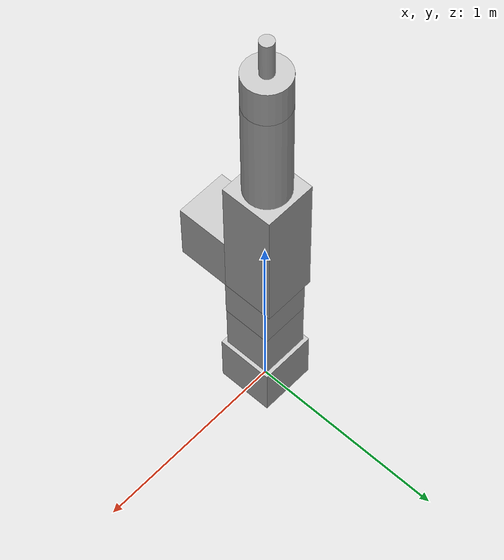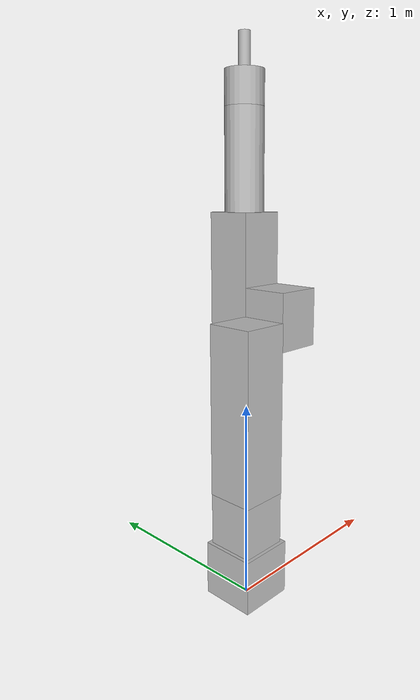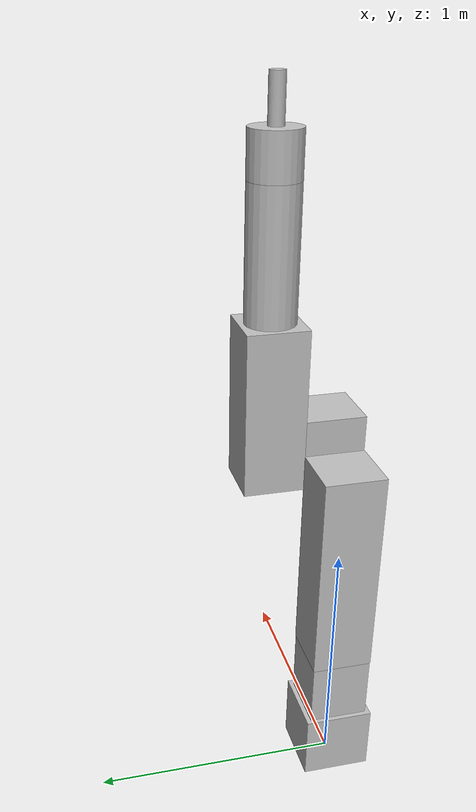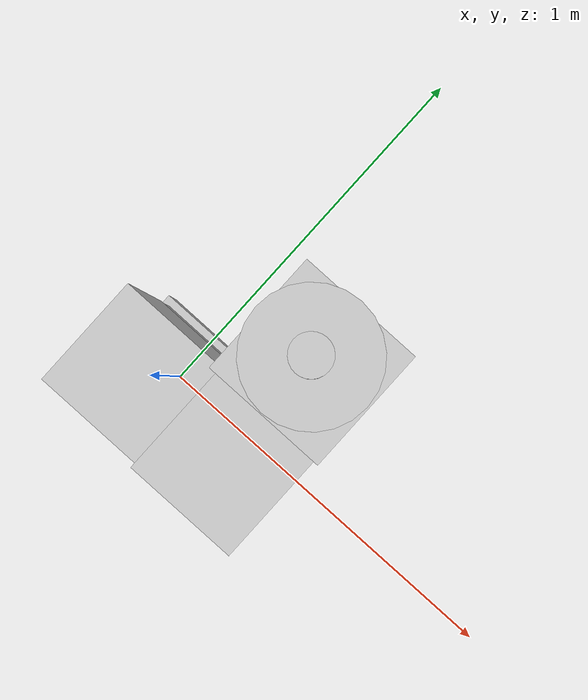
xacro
<?xml version="1.0"?>
<robot xmlns:xacro="http://www.ros.org/wiki/xacro" name="rob_manipulator">
    <xacro:arg name="initial_positions_file" default="initial_positions.yaml" />

    <!-- Import rob_manipulator urdf file -->
    <xacro:include filename="$(find rob_manip_description)/urdf/rob_manipulator.urdf" />

    <!-- Import control_xacro -->
    <xacro:include filename="rob_manipulator.ros2_control.xacro" />

    <xacro:rob_manipulator_ros2_control name="GazeboSimSystem" initial_positions_file="$(arg initial_positions_file)"/>
</robot>

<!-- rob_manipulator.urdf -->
<robot name="rob_manipulator">
    <!-- Dijelovi robota-->
    <link name="base_link">
        <visual>
            <geometry>
                <box size="0.28 0.28 0.2765" />
            </geometry>
            <material name="silver">
                <color rgba="0.75 0.75 0.75 1" />
            </material>
            <origin rpy="0.0 0 0" xyz="0 0 0.13825" />
        </visual>
        <collision>
            <geometry>
                <box size="0.28 0.28 0.2765" />
            </geometry>
            <origin rpy="0.0 0 0" xyz="0 0 0.13825" />
        </collision>
        <inertial>
            <mass value="1.0" />
            <inertia ixx="0.0027" iyy="0.0027" izz="0.005" ixy="0" ixz="0" iyz="0" />
            <origin rpy="0.0 0 0" xyz="0 0 0.13825" />
        </inertial>
    </link>
    <!-- Empty Link-->
    <link name="world" />
    <joint name="fixed" type="fixed">
        <parent link="world" />
        <child link="base_link" />
    </joint>

    <link name="link_1">
        <visual>
            <geometry>
                <box size="0.242 0.242 0.2635" />
            </geometry>
            <material name="silver">
                <color rgba="0.75 0.75 0.75 1" />
            </material>
            <origin rpy="0.0 0 0" xyz="0 0 0.13175" />
        </visual>
        <collision>
            <geometry>
                <box size="0.242 0.242 0.2635" />
            </geometry>
            <origin rpy="0.0 0 0" xyz="0 0 0.13175" />
        </collision>
        <inertial>
            <mass value="1.0" />
            <inertia ixx="0.00145" iyy="0.00145" izz="0.00125" ixy="0" ixz="0" iyz="0" />
            <origin rpy="0.0 0 0" xyz="0 0 0.13175" />
        </inertial>
    </link>
    <joint name="joint_1" type="continuous">
        <axis xyz="0 0 1" />
        <parent link="base_link" />
        <child link="link_1" />
        <origin rpy="0 0 0" xyz="0.0 0.0 0.2765" />
        <limit effort="300" velocity="1.0"/>

    </joint>
    <link name="link_2">
        <visual>
            <geometry>
                <box size="0.245 0.245 0.87" />
            </geometry>
            <material name="silver">
                <color rgba="0.75 0.75 0.75 1" />
            </material>
            <origin rpy="0.0 0 0" xyz="0 0 0.435" />
        </visual>
        <collision>
            <geometry>
                <box size="0.245 0.245 0.87" />
            </geometry>
            <origin rpy="0.0 0 0" xyz="0 0 0.435" />
        </collision>
        <inertial>
            <mass value="1.0" />
            <inertia ixx="0.01396" iyy="0.01396" izz="0.00125" ixy="0" ixz="0" iyz="0" />
            <origin rpy="0.0 0 0" xyz="0 0 0.435" />
        </inertial>
    </link>
    <joint name="joint_2" type="continuous">
        <axis xyz="1 0 0" />
        <parent link="link_1" />
        <child link="link_2" />
        <origin rpy="0 0 0" xyz="0 0 0.2635" />
        <limit effort="300" velocity="1.0"/>
    </joint>
    <link name="link_3">
        <visual>
            <geometry>
                <box size="0.242 0.242 0.290" />
            </geometry>
            <material name="silver">
                <color rgba="0.75 0.75 0.75 1" />
            </material>
            <origin rpy="0.0 0 0" xyz="0 0 0" />
        </visual>
        <visual>
            <geometry>
                <box size="0.242 0.242 0.6575" />
            </geometry>
            <material name="silver">
                <color rgba="0.75 0.75 0.75 1" />
            </material>
            <origin rpy="0.0 0 0" xyz="0 0.242 0.18375" />
        </visual>
        <collision>
            <geometry>
                <box size="0.242 0.242 0.290" />
            </geometry>
            <origin rpy="0.0 0 0" xyz="0 0 0" />
        </collision>
        <collision>
            <geometry>
                <box size="0.242 0.242 0.6575" />
            </geometry>
            <origin rpy="0.0 0 0" xyz="0 0.242 0.18375" />
        </collision>
        <inertial>
            <mass value="1.0" />
            <inertia ixx="0.01396" iyy="0.01396" izz="0.00125" ixy="0" ixz="0" iyz="0" />
            <origin rpy="0.0 0 0" xyz="0 0 0" />
        </inertial>
    </link>
    <joint name="joint_3" type="continuous">
        <axis xyz="1 0 0" />
        <parent link="link_2" />
        <child link="link_3" />
        <origin rpy="0 0 0" xyz="0.242 0 0.87" />
        <limit effort="300" velocity="1.0"/>
    </joint>
    <link name="link_4">
        <visual>
            <geometry>
                <cylinder length="0.5125" radius="0.1" />
            </geometry>
            <material name="silver">
                <color rgba="0.75 0.75 0.75 1" />
            </material>
            <origin rpy="0.0 0 0" xyz="0 0 0.25625" />
        </visual>
        <collision>
            <geometry>
                <cylinder length="0.5125" radius="0.1" />
            </geometry>
            <origin rpy="0.0 0 0" xyz="0 0 0.25625" />
        </collision>
        <inertial>
            <mass value="1.0" />
            <inertia ixx="0.01396" iyy="0.01396" izz="0.00125" ixy="0" ixz="0" iyz="0" />
            <origin rpy="0.0 0 0" xyz="0 0 0.25625" />
        </inertial>
    </link>
    <joint name="joint_4" type="continuous">
        <axis xyz="0 0 1" />
        <parent link="link_3" />
        <child link="link_4" />
        <origin rpy="0 0 0" xyz="0 0.242 0.5125" />
        <limit effort="300" velocity="1.0"/>
    </joint>
    <link name="link_5">
        <visual>
            <geometry>
                <cylinder length="0.175" radius="0.1" />
            </geometry>
            <material name="silver">
                <color rgba="0.75 0.75 0.75 1" />
            </material>
            <origin rpy="0.0 0 0" xyz="0 0 0.0875" />
        </visual>
        <collision>
            <geometry>
                <cylinder length="0.175" radius="0.1" />
            </geometry>
            <origin rpy="0.0 0 0" xyz="0 0 0.0875" />
        </collision>
        <inertial>
            <mass value="1.0" />
            <inertia ixx="0.01396" iyy="0.01396" izz="0.00125" ixy="0" ixz="0" iyz="0" />
            <origin rpy="0.0 0 0" xyz="0 0 0.0875" />
        </inertial>
    </link>
    <joint name="joint_5" type="continuous">
        <axis xyz="1 0 0" />
        <parent link="link_4" />
        <child link="link_5" />
        <origin rpy="0 0 0" xyz="0 0 0.5125" />
        <limit effort="300" velocity="1.0"/>
    </joint>
    <link name="link_6">
        <visual>
            <geometry>
                <cylinder length="0.175" radius="0.03" />
            </geometry>
            <material name="silver">
                <color rgba="0.75 0.75 0.75 1" />
            </material>
            <origin rpy="0.0 0 0" xyz="0 0 -0.0875" />
        </visual>
        <collision>
            <geometry>
                <cylinder length="0.175" radius="0.03" />
            </geometry>
            <origin rpy="0.0 0 0" xyz="0 0 -0.0875" />
        </collision>
        <inertial>
            <mass value="1.0" />
            <inertia ixx="0.01396" iyy="0.01396" izz="0.00125" ixy="0" ixz="0" iyz="0" />
            <origin rpy="0.0 0 0" xyz="0 0 -0.0875" />
        </inertial>
    </link>
    <joint name="joint_6" type="continuous">
        <axis xyz="0 0 1" />
        <parent link="link_5" />
        <child link="link_6" />
        <origin rpy="0 0 0" xyz="0 0 0.35" />
        <limit effort="300" velocity="1.0"/>
    </joint>

    <gazebo reference="base_link">
        <material>Gazebo/Chrome</material>
    </gazebo>
    <gazebo reference="link_1">
        <material>Gazebo/Chrome</material>
    </gazebo>
    <gazebo reference="link_2">
        <material>Gazebo/Chrome</material>
    </gazebo>
    <gazebo reference="link_3">
        <material>Gazebo/Chrome</material>
    </gazebo>
    <gazebo reference="link_4">
        <material>Gazebo/Chrome</material>
    </gazebo>
    <gazebo reference="link_5">
        <material>Gazebo/Chrome</material>
    </gazebo>
    <gazebo reference="link_6">
        <material>Gazebo/Chrome</material>
    </gazebo>

    <!-- ros_control plugin -->
    <gazebo>
    <plugin filename="libgz_ros2_control-system.so" name="gz_ros2_control::GazeboSimROS2ControlPlugin">
        <parameters>$(find rob_manip_moveit)/config/ros2_controllers.yaml</parameters>
    </plugin>
</gazebo>

</robot>
